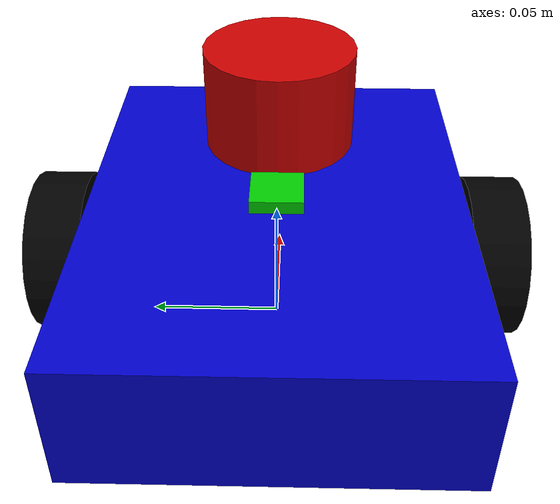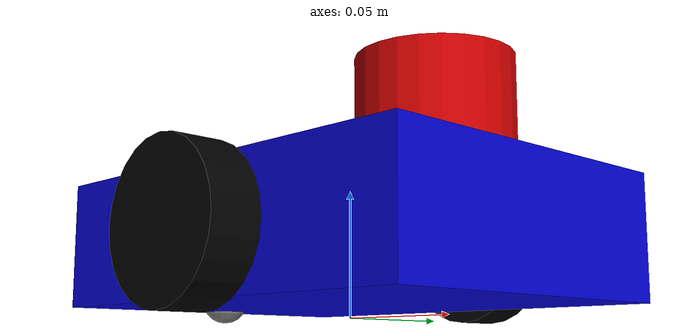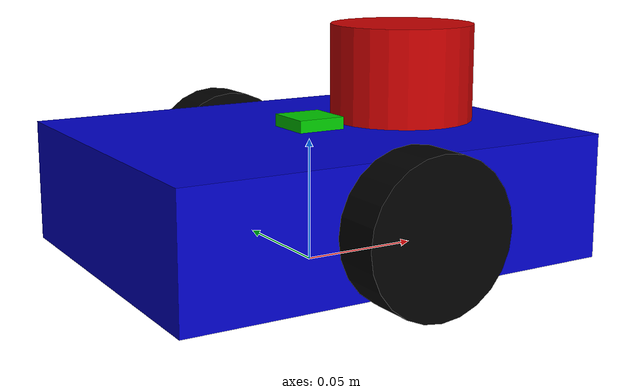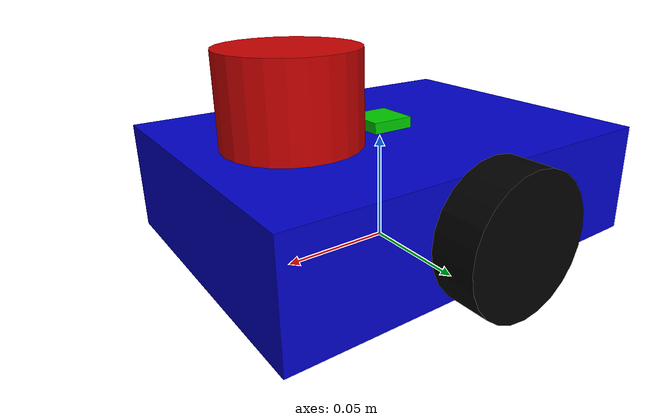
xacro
<?xml version="1.0"?>
<robot name="room_mapping_robot" xmlns:xacro="http://www.ros.org/wiki/xacro">

  <!-- XACRO PROPERTIES (constants used throughout the model)              -->

  <!-- Chassis dimensions (meters) -->
  <xacro:property name="chassis_length" value="0.18"/>
  <xacro:property name="chassis_width"  value="0.14"/>
  <xacro:property name="chassis_height" value="0.05"/>
  <xacro:property name="chassis_mass"   value="0.8"/>

  <!-- Wheel dimensions -->
  <xacro:property name="wheel_radius"     value="0.03"/>
  <xacro:property name="wheel_width"      value="0.02"/>
  <xacro:property name="wheel_mass"       value="0.1"/>
  <xacro:property name="wheel_separation" value="0.16"/>

  <!-- Caster wheel -->
  <xacro:property name="caster_radius" value="0.01"/>
  <xacro:property name="caster_mass"   value="0.05"/>

  <!-- Sensor positions -->
  <xacro:property name="lidar_height" value="0.04"/>
  <xacro:property name="lidar_radius" value="0.03"/>

  <!-- MATERIAL DEFINITIONS (colors for RViz visualization)                -->

  <material name="blue">
    <color rgba="0.0 0.0 0.8 1.0"/>
  </material>
  <material name="black">
    <color rgba="0.0 0.0 0.0 1.0"/>
  </material>
  <material name="white">
    <color rgba="1.0 1.0 1.0 1.0"/>
  </material>
  <material name="red">
    <color rgba="0.8 0.0 0.0 1.0"/>
  </material>
  <material name="green">
    <color rgba="0.0 0.8 0.0 1.0"/>
  </material>
  <material name="grey">
    <color rgba="0.5 0.5 0.5 1.0"/>
  </material>

  <!-- INERTIA MACROS                                                      -->
  <!-- These simplify inertia definitions for common shapes                -->

  <!-- Box inertia: used for chassis -->
  <xacro:macro name="box_inertia" params="m w h d">
    <inertial>
      <mass value="${m}"/>
      <inertia ixx="${(m/12.0)*(h*h+d*d)}" ixy="0.0" ixz="0.0"
               iyy="${(m/12.0)*(w*w+d*d)}" iyz="0.0"
               izz="${(m/12.0)*(w*w+h*h)}"/>
    </inertial>
  </xacro:macro>

  <!-- Cylinder inertia: used for wheels and LiDAR -->
  <xacro:macro name="cylinder_inertia" params="m r h">
    <inertial>
      <mass value="${m}"/>
      <inertia ixx="${(m/12.0)*(3*r*r+h*h)}" ixy="0.0" ixz="0.0"
               iyy="${(m/12.0)*(3*r*r+h*h)}" iyz="0.0"
               izz="${(m/2.0)*(r*r)}"/>
    </inertial>
  </xacro:macro>

  <!-- Sphere inertia: used for caster wheel -->
  <xacro:macro name="sphere_inertia" params="m r">
    <inertial>
      <mass value="${m}"/>
      <inertia ixx="${(2.0/5.0)*m*r*r}" ixy="0.0" ixz="0.0"
               iyy="${(2.0/5.0)*m*r*r}" iyz="0.0"
               izz="${(2.0/5.0)*m*r*r}"/>
    </inertial>
  </xacro:macro>

  <!-- WHEEL MACRO (reused for left and right wheels)                      -->

  <xacro:macro name="wheel" params="prefix y_offset">
    <link name="${prefix}_wheel_link">
      <visual>
        <origin xyz="0 0 0" rpy="${pi/2} 0 0"/>
        <geometry>
          <cylinder radius="${wheel_radius}" length="${wheel_width}"/>
        </geometry>
        <material name="black"/>
      </visual>
      <collision>
        <origin xyz="0 0 0" rpy="${pi/2} 0 0"/>
        <geometry>
          <cylinder radius="${wheel_radius}" length="${wheel_width}"/>
        </geometry>
      </collision>
      <xacro:cylinder_inertia m="${wheel_mass}" r="${wheel_radius}" h="${wheel_width}"/>
    </link>

    <!-- Continuous joint allows infinite rotation (like a real wheel) -->
    <joint name="${prefix}_wheel_joint" type="continuous">
      <parent link="base_link"/>
      <child link="${prefix}_wheel_link"/>
      <!-- Wheels are at the sides of the chassis, at ground level -->
      <origin xyz="0.0 ${y_offset} 0.0" rpy="0 0 0"/>
      <!-- Rotation axis is Y (wheels spin around the Y axis) -->
      <axis xyz="0 1 0"/>
      <dynamics damping="0.01" friction="0.1"/>
    </joint>

    <!-- Gazebo-specific wheel properties for realistic friction -->
    <gazebo reference="${prefix}_wheel_link">
      <material>Gazebo/DarkGrey</material>
      <mu1>1.0</mu1>
      <mu2>1.0</mu2>
      <kp>1000000.0</kp>
      <kd>100.0</kd>
      <minDepth>0.001</minDepth>
    </gazebo>
  </xacro:macro>

  <!-- BASE FOOTPRINT (ground reference frame)                             -->
  <!--
    base_footprint sits on the ground plane (z=0).
    This is the frame that odometry references.
    The actual robot body (base_link) is raised above it.
  -->

  <link name="base_footprint"/>

  <!-- BASE LINK (robot chassis)                                           -->
  <!--
    The main body of the robot. In the real robot, this is the chassis
    that holds the ESP32, L293D motor driver, battery, etc.
    Represented as a simple box for simulation simplicity.
  -->

  <link name="base_link">
    <visual>
      <origin xyz="0 0 0" rpy="0 0 0"/>
      <geometry>
        <box size="${chassis_length} ${chassis_width} ${chassis_height}"/>
      </geometry>
      <material name="blue"/>
    </visual>
    <collision>
      <origin xyz="0 0 0" rpy="0 0 0"/>
      <geometry>
        <box size="${chassis_length} ${chassis_width} ${chassis_height}"/>
      </geometry>
    </collision>
    <xacro:box_inertia m="${chassis_mass}" w="${chassis_width}" h="${chassis_height}" d="${chassis_length}"/>
  </link>

  <!-- Fixed joint: base_footprint → base_link (raise chassis to wheel height) -->
  <joint name="base_joint" type="fixed">
    <parent link="base_footprint"/>
    <child link="base_link"/>
    <!-- Raise base_link so wheels touch the ground -->
    <origin xyz="0.0 0.0 ${wheel_radius}" rpy="0 0 0"/>
  </joint>

  <gazebo reference="base_link">
    <material>Gazebo/Blue</material>
  </gazebo>

  <!-- DRIVE WHEELS (left and right)                                       -->

  <!-- Left wheel: +Y side of robot -->
  <xacro:wheel prefix="left" y_offset="${wheel_separation/2}"/>

  <!-- Right wheel: -Y side of robot -->
  <xacro:wheel prefix="right" y_offset="${-wheel_separation/2}"/>

  <!-- CASTER WHEEL (passive support wheel)                                -->

  <link name="caster_wheel">
    <visual>
      <origin xyz="0 0 0" rpy="0 0 0"/>
      <geometry>
        <sphere radius="${caster_radius}"/>
      </geometry>
      <material name="grey"/>
    </visual>
    <collision>
      <origin xyz="0 0 0" rpy="0 0 0"/>
      <geometry>
        <sphere radius="${caster_radius}"/>
      </geometry>
    </collision>
    <xacro:sphere_inertia m="${caster_mass}" r="${caster_radius}"/>
  </link>

  <joint name="caster_wheel_joint" type="fixed">
    <parent link="base_link"/>
    <child link="caster_wheel"/>
    <!-- Caster at rear of robot, lowered to touch ground -->
    <origin xyz="${-chassis_length/2 + caster_radius} 0 ${-wheel_radius + caster_radius}" rpy="0 0 0"/>
  </joint>

  <!-- Near-zero friction so caster slides freely -->
  <gazebo reference="caster_wheel">
    <material>Gazebo/Grey</material>
    <mu1>0.001</mu1>
    <mu2>0.001</mu2>
    <kp>1000000.0</kp>
    <kd>100.0</kd>
    <minDepth>0.001</minDepth>
  </gazebo>

  <!-- LIDAR LINK (2D laser scanner)                                       -->

  <link name="lidar_link">
    <visual>
      <origin xyz="0 0 0" rpy="0 0 0"/>
      <geometry>
        <cylinder radius="${lidar_radius}" length="${lidar_height}"/>
      </geometry>
      <material name="red"/>
    </visual>
    <collision>
      <origin xyz="0 0 0" rpy="0 0 0"/>
      <geometry>
        <cylinder radius="${lidar_radius}" length="${lidar_height}"/>
      </geometry>
    </collision>
    <xacro:cylinder_inertia m="0.1" r="${lidar_radius}" h="${lidar_height}"/>
  </link>

  <joint name="lidar_joint" type="fixed">
    <parent link="base_link"/>
    <child link="lidar_link"/>
    <!-- LiDAR mounted on top of chassis, toward the front -->
    <origin xyz="${chassis_length/4} 0 ${chassis_height/2 + lidar_height/2}" rpy="0 0 0"/>
  </joint>

  <gazebo reference="lidar_link">
    <material>Gazebo/Red</material>
  </gazebo>

  <!-- IMU LINK (Inertial Measurement Unit)                                -->

  <link name="imu_link">
    <visual>
      <origin xyz="0 0 0" rpy="0 0 0"/>
      <geometry>
        <box size="0.02 0.02 0.005"/>
      </geometry>
      <material name="green"/>
    </visual>
    <collision>
      <origin xyz="0 0 0" rpy="0 0 0"/>
      <geometry>
        <box size="0.02 0.02 0.005"/>
      </geometry>
    </collision>
    <xacro:box_inertia m="0.01" w="0.02" h="0.005" d="0.02"/>
  </link>

  <joint name="imu_joint" type="fixed">
    <parent link="base_link"/>
    <child link="imu_link"/>
    <!-- IMU mounted at center of chassis, on top -->
    <origin xyz="0 0 ${chassis_height/2 + 0.0025}" rpy="0 0 0"/>
  </joint>

  <gazebo reference="imu_link">
    <material>Gazebo/Green</material>
  </gazebo>

  <gazebo>
    <plugin filename="gz-sim-diff-drive-system"
            name="gz::sim::systems::DiffDrive">
      <!-- Wheel joints (must match joint names above) -->
      <left_joint>left_wheel_joint</left_joint>
      <right_joint>right_wheel_joint</right_joint>

      <!-- Wheel geometry (must match URDF dimensions) -->
      <wheel_separation>${wheel_separation}</wheel_separation>
      <wheel_radius>${wheel_radius}</wheel_radius>

      <!-- Odometry publish rate -->
      <odom_publish_frequency>50</odom_publish_frequency>

      <!-- Gz topic names (absolute paths to avoid model-scoping) -->
      <topic>/cmd_vel</topic>
      <odom_topic>/odom</odom_topic>
      <tf_topic>/tf</tf_topic>

      <!-- TF frame configuration -->
      <frame_id>odom</frame_id>
      <child_frame_id>base_footprint</child_frame_id>

      <!-- Velocity limits -->
      <min_velocity>-0.5</min_velocity>
      <max_velocity>0.5</max_velocity>
      <min_acceleration>-1.0</min_acceleration>
      <max_acceleration>1.0</max_acceleration>
    </plugin>
  </gazebo>

  <gazebo>
    <plugin filename="gz-sim-joint-state-publisher-system"
            name="gz::sim::systems::JointStatePublisher">
      <topic>/joint_states</topic>
      <joint_name>left_wheel_joint</joint_name>
      <joint_name>right_wheel_joint</joint_name>
    </plugin>
  </gazebo>

  <gazebo reference="lidar_link">
    <sensor name="lidar_sensor" type="gpu_lidar">
      <update_rate>10</update_rate>
      <!-- Absolute gz topic name — bridged to ROS2 /scan -->
      <topic>/scan</topic>
      <gz_frame_id>lidar_link</gz_frame_id>
      <lidar>
        <scan>
          <horizontal>
            <samples>360</samples>
            <resolution>1</resolution>
            <min_angle>-3.14159</min_angle>
            <max_angle>3.14159</max_angle>
          </horizontal>
        </scan>
        <range>
          <min>0.10</min>
          <max>8.0</max>
          <resolution>0.01</resolution>
        </range>
        <noise>
          <type>gaussian</type>
          <mean>0.0</mean>
          <stddev>0.005</stddev>
        </noise>
      </lidar>
      <always_on>true</always_on>
      <visualize>true</visualize>
    </sensor>
  </gazebo>

  <gazebo reference="imu_link">
    <sensor name="imu_sensor" type="imu">
      <update_rate>100</update_rate>
      <!-- Absolute gz topic name — bridged to ROS2 /imu -->
      <topic>/imu</topic>
      <gz_frame_id>imu_link</gz_frame_id>
      <always_on>true</always_on>
      <visualize>false</visualize>
      <imu>
        <angular_velocity>
          <x>
            <noise type="gaussian">
              <mean>0.0</mean>
              <stddev>0.0002</stddev>
            </noise>
          </x>
          <y>
            <noise type="gaussian">
              <mean>0.0</mean>
              <stddev>0.0002</stddev>
            </noise>
          </y>
          <z>
            <noise type="gaussian">
              <mean>0.0</mean>
              <stddev>0.0002</stddev>
            </noise>
          </z>
        </angular_velocity>
        <linear_acceleration>
          <x>
            <noise type="gaussian">
              <mean>0.0</mean>
              <stddev>0.017</stddev>
            </noise>
          </x>
          <y>
            <noise type="gaussian">
              <mean>0.0</mean>
              <stddev>0.017</stddev>
            </noise>
          </y>
          <z>
            <noise type="gaussian">
              <mean>0.0</mean>
              <stddev>0.017</stddev>
            </noise>
          </z>
        </linear_acceleration>
      </imu>
    </sensor>
  </gazebo>

</robot>
